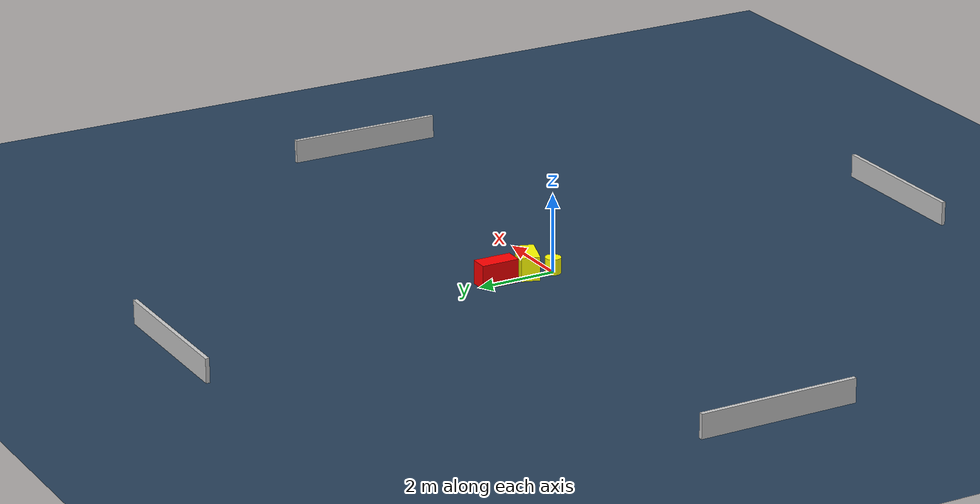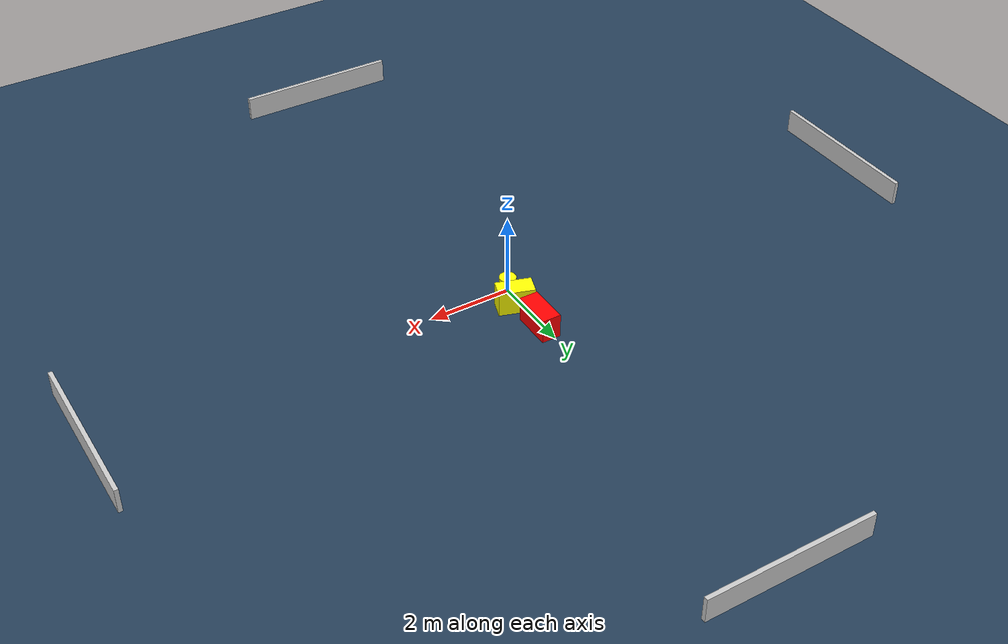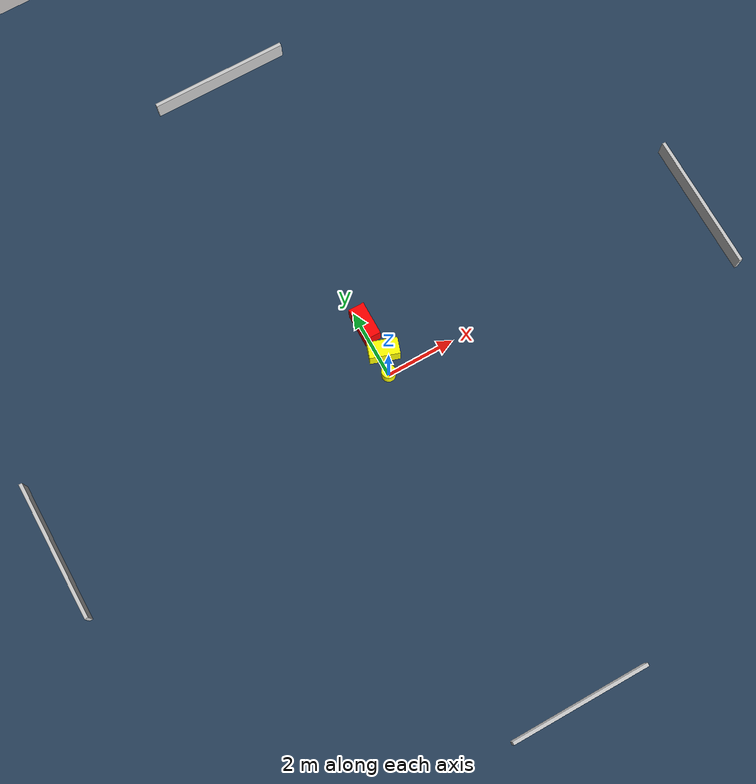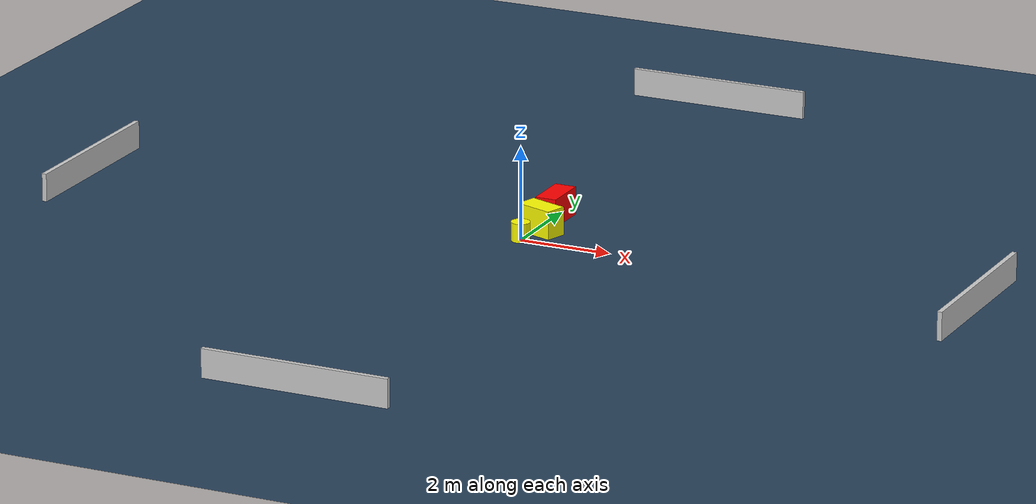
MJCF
<?xml version="1.0" ?>
<mujoco model="generated_environment">
  <option timestep="0.01" integrator="RK4" cone="elliptic"/>
  <default>
    <geom density="1"/>
  </default>
  <asset>
    <texture builtin="gradient" height="3072" name="skybox" rgb1="0.3 0.5 0.7" rgb2="0 0 0" type="skybox" width="512"/>
    <texture builtin="checker" height="300" name="groundplane" rgb1="0.2 0.3 0.4" rgb2="0.1 0.2 0.3" type="2d" width="300"/>
    <material name="groundplane" reflectance="0.2" texrepeat="5 5" texture="groundplane"/>
  </asset>
  <worldbody>
    <light dir="0 0 -1" directional="true" pos="0 0 1.5"/>
    <geom condim="3" friction="0.5 0.005 0.001" material="groundplane" name="floor" pos="0 0 0" size="0 0 0.05" type="plane"/>
    <body name="walls">
      <geom name="wall_1" condim="4" pos="-10.0 0.0 0.3" rgba="0.800000011920929 0.800000011920929 0.800000011920929 1.0" size="0.05 2.0 0.3" type="box"/>
      <geom name="wall_2" condim="4" pos="10.0 0.0 0.3" rgba="0.800000011920929 0.800000011920929 0.800000011920929 1.0" size="0.05 2.0 0.3" type="box"/>
      <geom name="wall_3" condim="4" pos="0.0 -10.0 0.3" rgba="0.800000011920929 0.800000011920929 0.800000011920929 1.0" size="2.0 0.05 0.3" type="box"/>
      <geom name="wall_4" condim="4" pos="0.0 10.0 0.3" rgba="0.800000011920929 0.800000011920929 0.800000011920929 1.0" size="2.0 0.05 0.3" type="box"/>
    </body>
    <body name="robot">
      <joint name="joint_x" type="slide" pos="0 0 0" axis="1 0 0"/>
      <joint name="joint_y" type="slide" pos="0 0 0" axis="0 1 0"/>
      <geom name="robot" type="cylinder" pos="0.0 0.0 0.2" size="0.2 0.2 0.0" mass="5.0" friction="1.0 0.005 0.0001" condim="4" rgba="1.0 1.0 0.0 1.0"/>
    </body>
    <body name="obstacle_1_movable">
      <geom name="obstacle_1_movable" condim="4" pos="0.1733732890902054 0.598727980087897 0.3" euler="0 0 341.66396184715984" friction="0.0 0.005 0.001" rgba="1.0 1.0 0.0 1.0" size="0.42618189353588753 0.23013390126586752 0.3" type="box" mass="0.1"/>
      <joint type="free"/>
    </body>
    <body name="obstacle_2_static">
      <geom name="obstacle_2_static" condim="4" pos="0.08253592896633168 1.505070385216864 0.3" euler="0 0 359.8451698893021" friction="0.0 0.005 0.001" rgba="1.0 0.0 0.0 1.0" size="0.22961430134830949 0.48325590671697877 0.3" type="box"/>
    </body>
  </worldbody>
  <actuator>
    <motor name="actuator_x" joint="joint_x" gear="1" ctrlrange="-1 1"/>
    <motor name="actuator_y" joint="joint_y" gear="1" ctrlrange="-1 1"/>
  </actuator>
</mujoco>
